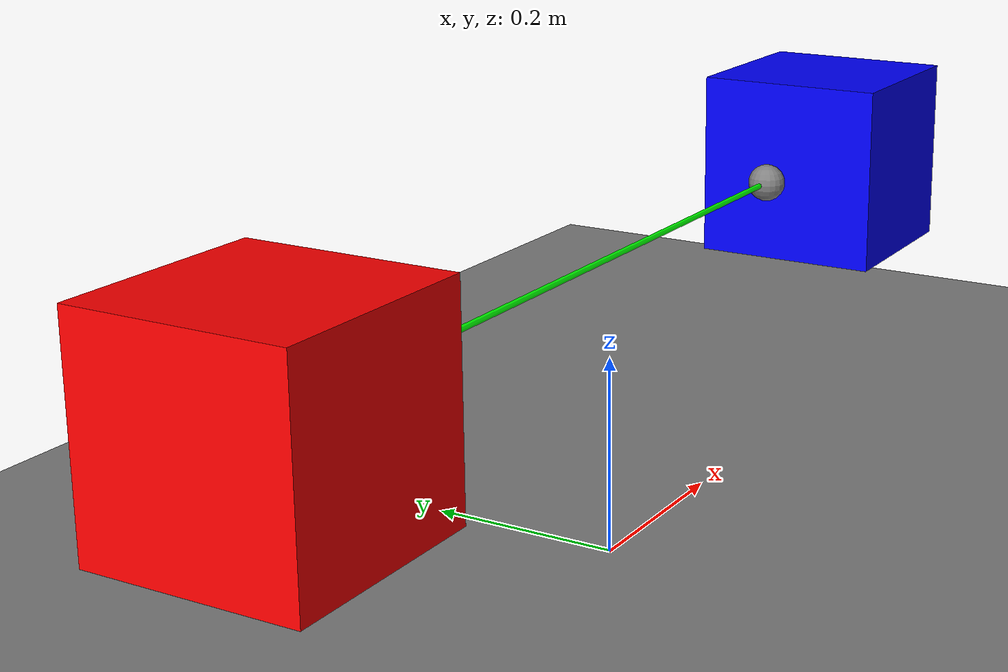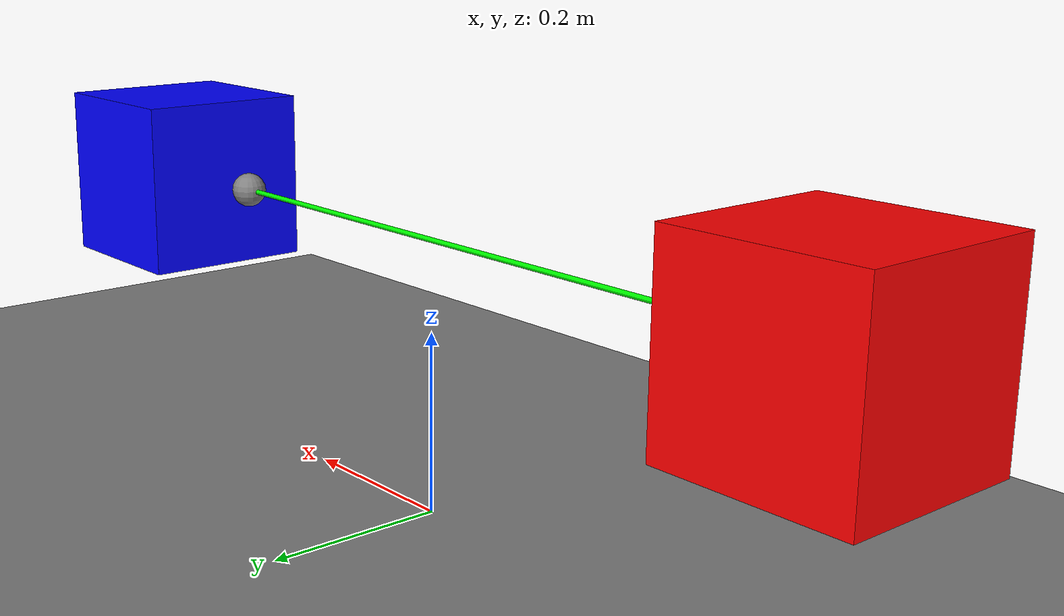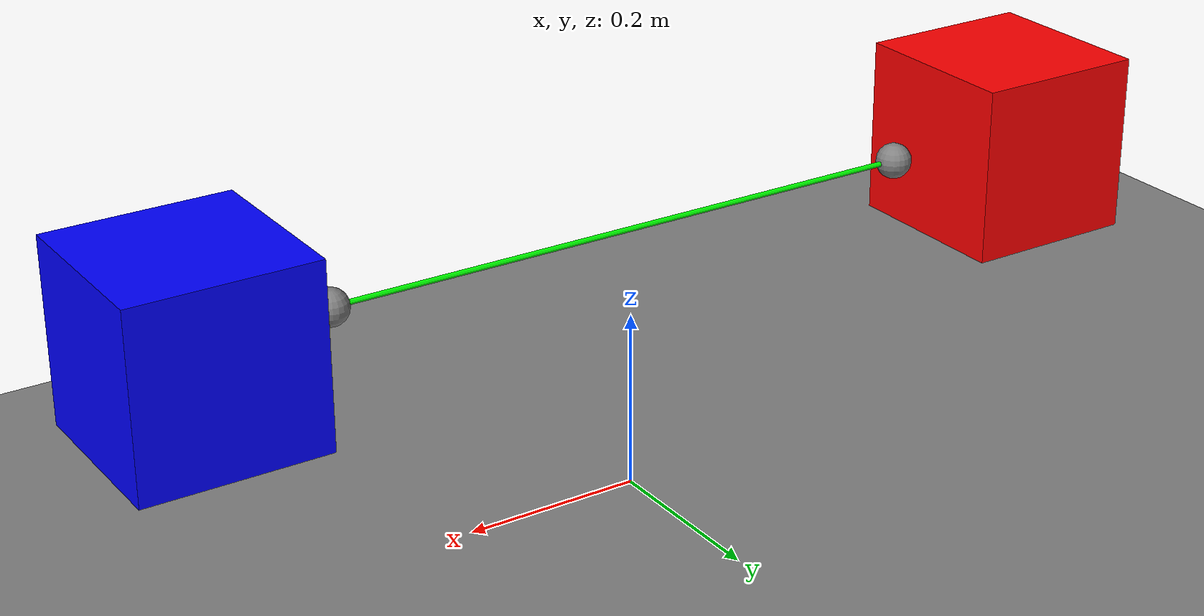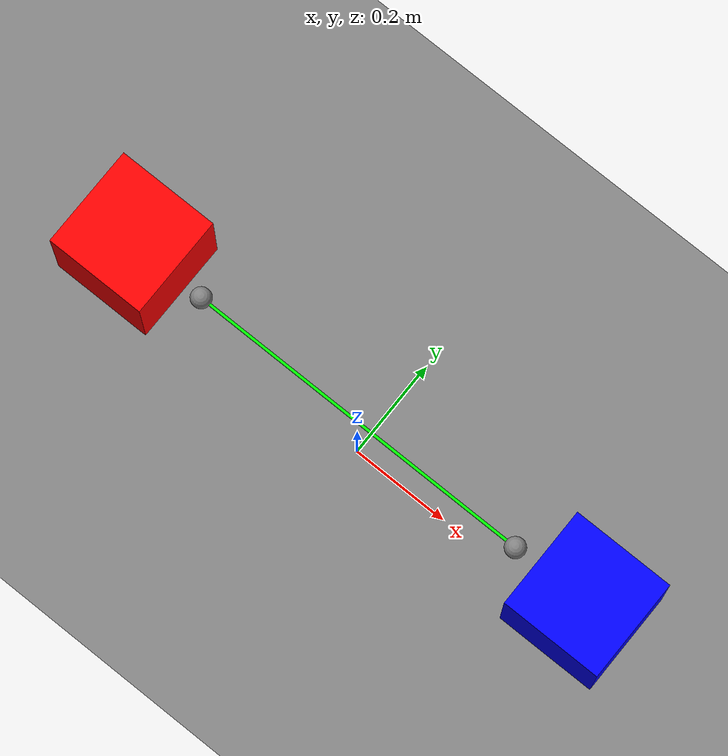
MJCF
<?xml version="1.0" ?>
<mujoco>
  <worldbody>
    <light pos="0 0 3"/>
    <geom name="floor" type="plane" size="3 3 0.1"/>
    <body name="box1" pos="-0.5 0 0.3">
      <freejoint/>
      <geom name="box1_geom" type="box" size="0.1 0.1 0.1" rgba="1 0 0 1"/>
      <site name="box1_right" pos="0.15 0 0" size="0.02"/>
    </body>
    <body name="box2" pos="0.5 0 0.3">
      <freejoint/>
      <geom name="box2_geom" type="box" size="0.1 0.1 0.1" rgba="0 0 1 1"/>
      <site name="box2_left" pos="-0.15 0 0" size="0.02"/>
    </body>
  </worldbody>
  <option gravity="0 0 -9.81"/>
  <tendon>
    <spatial name="connection" rgba="0 1 0 1" stiffness="100" damping="10">
      <site site="box1_right"/>
      <site site="box2_left"/>
    </spatial>
  </tendon>
</mujoco>
